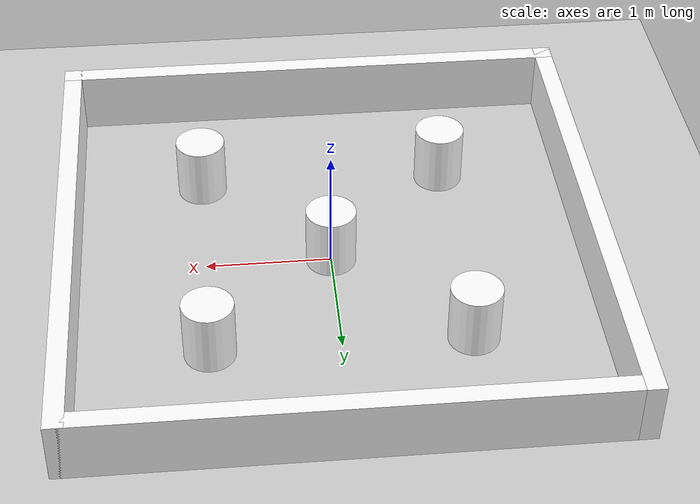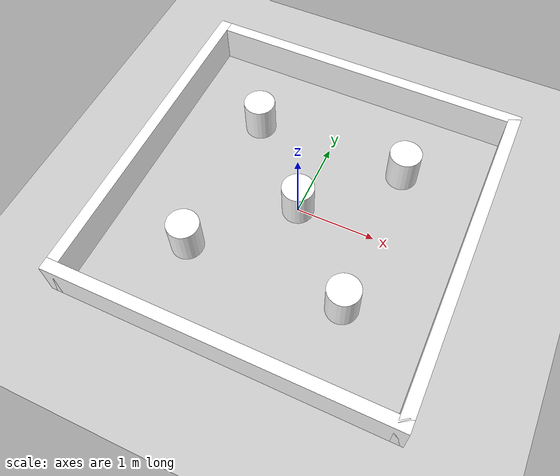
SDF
<sdf version='1.6'>
  <world name='default'>
    <!-- A global light source -->
    <include>
      <uri>model://sun</uri>
    </include>

    <!-- A ground plane -->
    <include>
      <uri>model://ground_plane</uri>
    </include>

    <physics type="ode">
      <real_time_update_rate>100.0</real_time_update_rate>
      <max_step_size>0.01</max_step_size>
      <real_time_factor>0.5</real_time_factor>
      <ode>
        <solver>
          <type>quick</type>
          <iters>150</iters>
          <precon_iters>0</precon_iters>
          <sor>1.400000</sor>
          <use_dynamic_moi_rescaling>1</use_dynamic_moi_rescaling>
        </solver>
        <constraints>
          <cfm>0.00001</cfm>
          <erp>0.2</erp>
          <contact_max_correcting_vel>2000.000000</contact_max_correcting_vel>
          <contact_surface_layer>0.01000</contact_surface_layer>
        </constraints>
      </ode>
    </physics>

    <!-- Load world -->
    <include>
      <uri>model://box_walls</uri>
    </include>

    <model name="cylinder1">
      <link name="link">
        <collision name="collision">
          <pose frame=''>0 0 0.25 0 -0 0</pose>
          <geometry>
            <cylinder>
              <radius>0.2</radius>
              <length>0.5</length>
            </cylinder>
          </geometry>
        </collision>
        <visual name="visual">
          <pose frame=''>0 0 0.25 0 -0 0</pose>
          <geometry>
            <cylinder>
              <radius>0.2</radius>
              <length>0.5</length>
            </cylinder>
          </geometry>
          <material>
            <ambient>1 1 1 1</ambient>
          </material>
        </visual>
      </link>
      <pose frame=''>-1 1 0 0 0 0</pose>
      <static>true</static>
    </model>

    <model name="cylinder2">
      <link name="link">
        <collision name="collision">
          <pose frame=''>0 0 0.25 0 -0 0</pose>
          <geometry>
            <cylinder>
              <radius>0.2</radius>
              <length>0.5</length>
            </cylinder>
          </geometry>
        </collision>
        <visual name="visual">
          <pose frame=''>0 0 0.25 0 -0 0</pose>
          <geometry>
            <cylinder>
              <radius>0.2</radius>
              <length>0.5</length>
            </cylinder>
          </geometry>
          <material>
            <ambient>1 1 1 1</ambient>
          </material>
        </visual>
      </link>
      <pose frame=''>1 1 0 0 0 0</pose>
      <static>true</static>
    </model>

    <model name="cylinder3">
      <link name="link">
        <collision name="collision">
          <pose frame=''>0 0 0.25 0 -0 0</pose>
          <geometry>
            <cylinder>
              <radius>0.2</radius>
              <length>0.5</length>
            </cylinder>
          </geometry>
        </collision>
        <visual name="visual">
          <pose frame=''>0 0 0.25 0 -0 0</pose>
          <geometry>
            <cylinder>
              <radius>0.2</radius>
              <length>0.5</length>
            </cylinder>
          </geometry>
          <material>
            <ambient>1 1 1 1</ambient>
          </material>
        </visual>
      </link>
      <pose frame=''>0 0 0 0 0 0</pose>
      <static>true</static>
    </model>

    <model name="cylinder4">
      <link name="link">
        <collision name="collision">
          <pose frame=''>0 0 0.25 0 -0 0</pose>
          <geometry>
            <cylinder>
              <radius>0.2</radius>
              <length>0.5</length>
            </cylinder>
          </geometry>
        </collision>
        <visual name="visual">
          <pose frame=''>0 0 0.25 0 -0 0</pose>
          <geometry>
            <cylinder>
              <radius>0.2</radius>
              <length>0.5</length>
            </cylinder>
          </geometry>
          <material>
            <ambient>1 1 1 1</ambient>
          </material>
        </visual>
      </link>
      <pose frame=''>-1 -1 0 0 0 0</pose>
      <static>true</static>
    </model>

    <model name="cylinder5">
      <link name="link">
        <collision name="collision">
          <pose frame=''>0 0 0.25 0 -0 0</pose>
          <geometry>
            <cylinder>
              <radius>0.2</radius>
              <length>0.5</length>
            </cylinder>
          </geometry>
        </collision>
        <visual name="visual">
          <pose frame=''>0 0 0.25 0 -0 0</pose>
          <geometry>
            <cylinder>
              <radius>0.2</radius>
              <length>0.5</length>
            </cylinder>
          </geometry>
          <material>
            <ambient>1 1 1 1</ambient>
          </material>
        </visual>
      </link>
      <pose frame=''>1 -1 0 0 0 0</pose>
      <static>true</static>
    </model>

    <scene>
      <ambient>0.4 0.4 0.4 1</ambient>
      <background>0.7 0.7 0.7 1</background>
      <shadows>false</shadows>
    </scene>

    <gui fullscreen='0'>
      <camera name='user_camera'>
        <pose>0.8 0.0 12.0 0 1.5708 0</pose>
        <view_controller>orbit</view_controller>
      </camera>
    </gui>
  </world>
</sdf>

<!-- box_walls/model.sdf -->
<sdf version='1.6'>
  <model name='box_walls'>
    <link name='fixed'></link>
    <pose frame=''>0 0 0 0 -0 0</pose>
    <link name='Wall_0'>
      <collision name='Wall_0_Collision'>
        <geometry>
          <box>
            <size>4.3 0.15 0.5</size>
          </box>
        </geometry>
        <surface>
          <contact>
            <ode>
              <max_vel>0.0</max_vel>
            </ode>
          </contact>
        </surface>
        <pose frame=''>0 0 0.25 0 -0 0</pose>
      </collision>
      <visual name='Wall_0_Visual'>
        <pose frame=''>0 0 0.25 0 -0 0</pose>
        <geometry>
          <box>
            <size>4.3 0.15 0.5</size>
          </box>
        </geometry>
        <material>
          <ambient>1 1 1 1</ambient>
        </material>
      </visual>
      <pose frame=''>0 2.075 0 0 -0 0</pose>
    </link>
    <link name='Wall_2'>
      <collision name='Wall_2_Collision'>
        <geometry>
          <box>
            <size>4.3 0.15 0.5</size>
          </box>
        </geometry>
        <surface>
          <contact>
            <ode>
              <max_vel>0.0</max_vel>
            </ode>
          </contact>
        </surface>
        <pose frame=''>0 0 0.25 0 -0 0</pose>
      </collision>
      <visual name='Wall_2_Visual'>
        <pose frame=''>0 0 0.25 0 -0 0</pose>
        <geometry>
          <box>
            <size>4.3 0.15 0.5</size>
          </box>
        </geometry>
        <material>
          <ambient>1 1 1 1</ambient>
        </material>
      </visual>
      <pose frame=''>-2.075 0 0 0 0 -1.5708</pose>
    </link>
    <link name='Wall_3'>
      <collision name='Wall_3_Collision'>
        <geometry>
          <box>
            <size>4.3 0.15 0.5</size>
          </box>
        </geometry>
        <surface>
          <contact>
            <ode>
              <max_vel>0.0</max_vel>
            </ode>
          </contact>
        </surface>
        <pose frame=''>0 0 0.25 0 -0 0</pose>
      </collision>
      <visual name='Wall_3_Visual'>
        <pose frame=''>0 0 0.25 0 -0 0</pose>
        <geometry>
          <box>
            <size>4.3 0.15 0.5</size>
          </box>
        </geometry>
        <material>
          <ambient>1 1 1 1</ambient>
        </material>
      </visual>
      <pose frame=''>0 -2.075 0 0 -0 0</pose>
    </link>
    <link name='Wall_4'>
      <collision name='Wall_4_Collision'>
        <geometry>
          <box>
            <size>4.3 0.15 0.5</size>
          </box>
        </geometry>
        <surface>
          <contact>
            <ode>
              <max_vel>0.0</max_vel>
            </ode>
          </contact>
        </surface>
        <pose frame=''>0 0 0.25 0 -0 0</pose>
      </collision>
      <visual name='Wall_4_Visual'>
        <pose frame=''>0 0 0.25 0 -0 0</pose>
        <geometry>
          <box>
            <size>4.3 0.15 0.5</size>
          </box>
        </geometry>
        <material>
          <ambient>1 1 1 1</ambient>
        </material>
      </visual>
      <pose frame=''>2.075 0 0 0 -0 1.5708</pose>
    </link>
    <static>1</static>
  </model>
</sdf>
